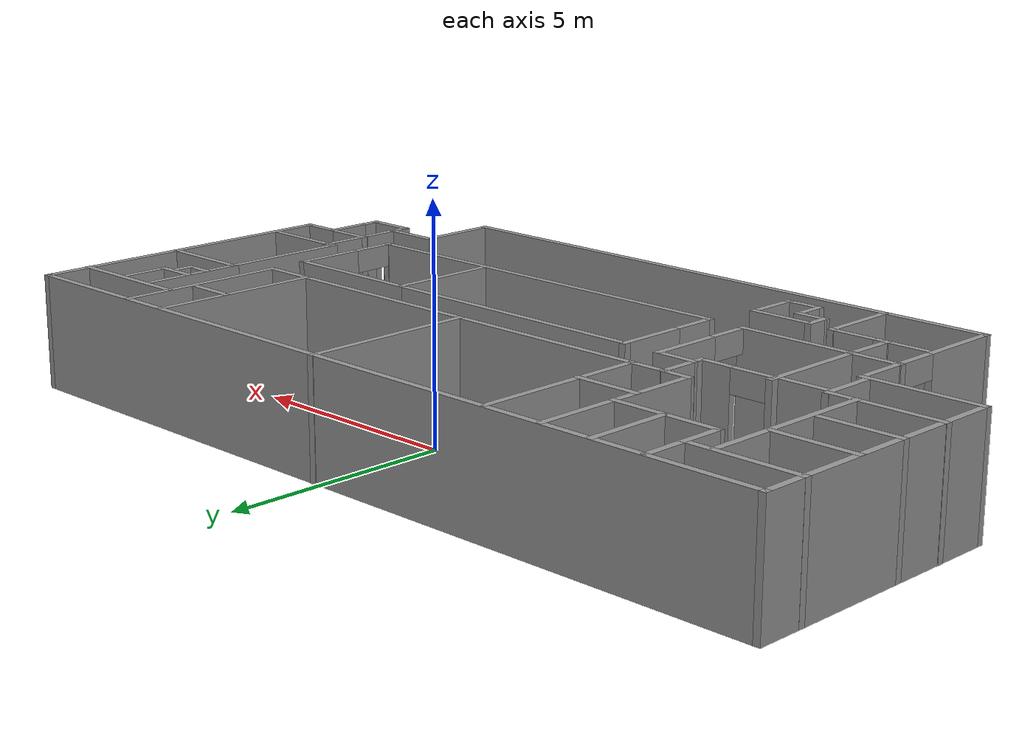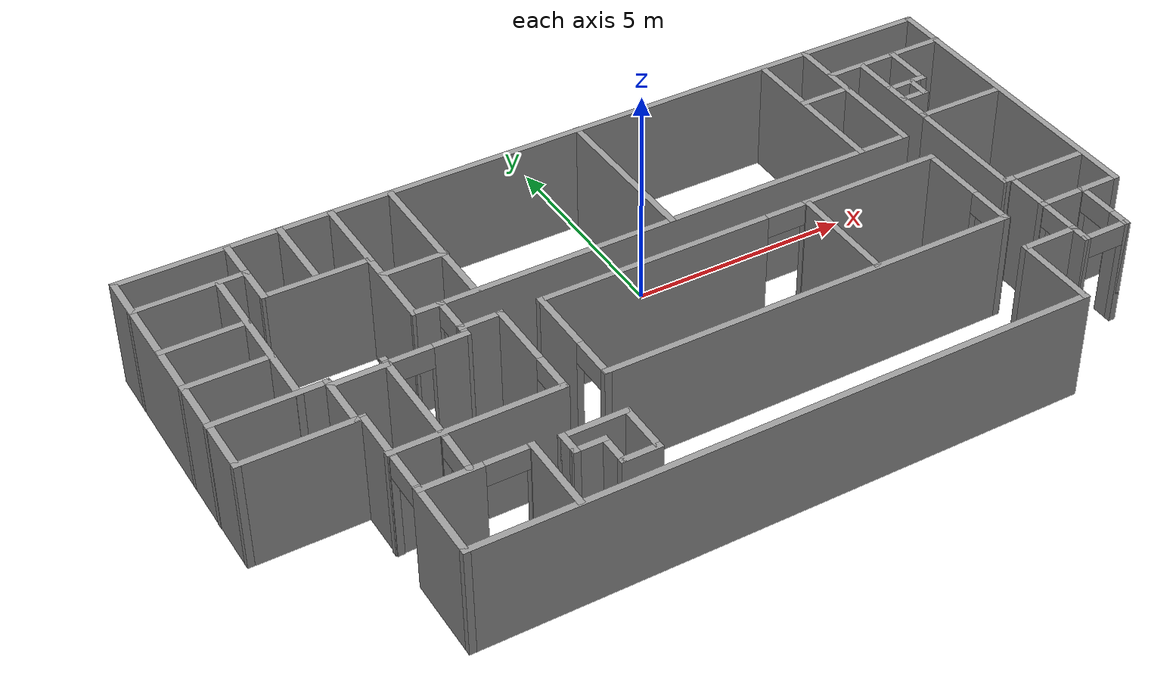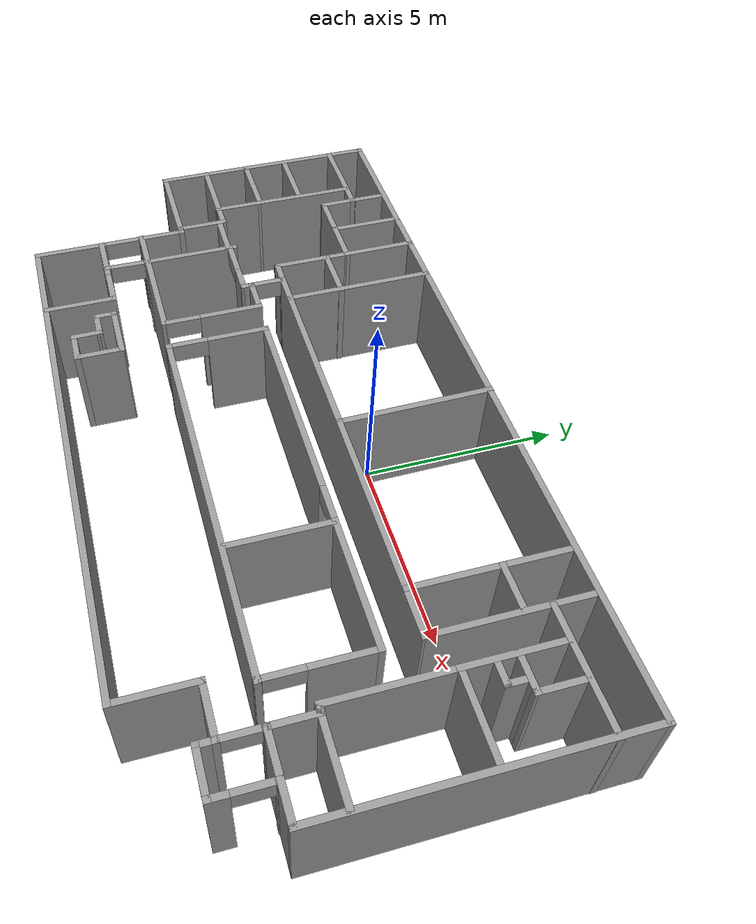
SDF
<?xml version='1.0'?>
<sdf version='1.6'>
  <model name='dehf1'>
    <pose frame=''>-0.693207 -2.07735 0 0 -0 0</pose>
    <link name='Wall_100'>
      <pose frame=''>2.05121 0.314345 0 0 -0 0</pose>
      <visual name='Wall_100_Visual_0'>
        <pose frame=''>-2.10558 0 1.25 0 -0 0</pose>
        <geometry>
          <box>
            <size>5.29904 0.15 2.5</size>
          </box>
        </geometry>
        <material>
          <script>
            <uri>file://media/materials/scripts/gazebo.material</uri>
            <name>Gazebo/Grey</name>
          </script>
          <ambient>1 1 1 1</ambient>
        </material>
      </visual>
      <collision name='Wall_100_Collision_0'>
        <geometry>
          <box>
            <size>5.29904 0.15 2.5</size>
          </box>
        </geometry>
        <pose frame=''>-2.10558 0 1.25 0 -0 0</pose>
      </collision>
      <visual name='Wall_100_Visual_1'>
        <pose frame=''>3.09952 0 1.25 0 -0 0</pose>
        <geometry>
          <box>
            <size>3.31115 0.15 2.5</size>
          </box>
        </geometry>
        <material>
          <script>
            <uri>file://media/materials/scripts/gazebo.material</uri>
            <name>Gazebo/Grey</name>
          </script>
          <ambient>1 1 1 1</ambient>
        </material>
      </visual>
      <collision name='Wall_100_Collision_1'>
        <geometry>
          <box>
            <size>3.31115 0.15 2.5</size>
          </box>
        </geometry>
        <pose frame=''>3.09952 0 1.25 0 -0 0</pose>
      </collision>
      <visual name='Wall_100_Visual_2'>
        <pose frame=''>0.993942 0 2.25 0 -0 0</pose>
        <geometry>
          <box>
            <size>0.9 0.15 0.5</size>
          </box>
        </geometry>
        <material>
          <script>
            <uri>file://media/materials/scripts/gazebo.material</uri>
            <name>Gazebo/Grey</name>
          </script>
          <ambient>1 1 1 1</ambient>
        </material>
      </visual>
      <collision name='Wall_100_Collision_2'>
        <geometry>
          <box>
            <size>0.9 0.15 0.5</size>
          </box>
        </geometry>
        <pose frame=''>0.993942 0 2.25 0 -0 0</pose>
      </collision>
    </link>
    <link name='Wall_102'>
      <collision name='Wall_102_Collision'>
        <geometry>
          <box>
            <size>2.5 0.15 2.5</size>
          </box>
        </geometry>
        <pose frame=''>0 0 1.25 0 -0 0</pose>
      </collision>
      <visual name='Wall_102_Visual'>
        <pose frame=''>0 0 1.25 0 -0 0</pose>
        <geometry>
          <box>
            <size>2.5 0.15 2.5</size>
          </box>
        </geometry>
        <material>
          <script>
            <uri>file://media/materials/scripts/gazebo.material</uri>
            <name>Gazebo/Grey</name>
          </script>
          <ambient>1 1 1 1</ambient>
        </material>
      </visual>
      <pose frame=''>3.59037 -0.931067 0 0 0 -1.5708</pose>
    </link>
    <link name='Wall_104'>
      <collision name='Wall_104_Collision'>
        <geometry>
          <box>
            <size>11.1951 0.15 2.5</size>
          </box>
        </geometry>
        <pose frame=''>0 0 1.25 0 -0 0</pose>
      </collision>
      <visual name='Wall_104_Visual'>
        <pose frame=''>0 0 1.25 0 -0 0</pose>
        <geometry>
          <box>
            <size>11.1951 0.15 2.5</size>
          </box>
        </geometry>
        <material>
          <script>
            <uri>file://media/materials/scripts/gazebo.material</uri>
            <name>Gazebo/Grey</name>
          </script>
          <ambient>1 1 1 1</ambient>
        </material>
      </visual>
      <pose frame=''>1.17465 1.21384 0 0 0 -3.14023</pose>
    </link>
    <link name='Wall_105'>
      <pose frame=''>-4.34791 0.781331 0 0 0 -1.5708</pose>
      <visual name='Wall_105_Visual_0'>
        <pose frame=''>-0.432332 0 1.25 0 -0 0</pose>
        <geometry>
          <box>
            <size>0.135337 0.15 2.5</size>
          </box>
        </geometry>
        <material>
          <script>
            <uri>file://media/materials/scripts/gazebo.material</uri>
            <name>Gazebo/Grey</name>
          </script>
          <ambient>1 1 1 1</ambient>
        </material>
      </visual>
      <collision name='Wall_105_Collision_0'>
        <geometry>
          <box>
            <size>0.135337 0.15 2.5</size>
          </box>
        </geometry>
        <pose frame=''>-0.432332 0 1.25 0 -0 0</pose>
      </collision>
      <visual name='Wall_105_Visual_1'>
        <pose frame=''>0.428668 0 1.25 0 -0 0</pose>
        <geometry>
          <box>
            <size>0.142663 0.15 2.5</size>
          </box>
        </geometry>
        <material>
          <script>
            <uri>file://media/materials/scripts/gazebo.material</uri>
            <name>Gazebo/Grey</name>
          </script>
          <ambient>1 1 1 1</ambient>
        </material>
      </visual>
      <collision name='Wall_105_Collision_1'>
        <geometry>
          <box>
            <size>0.142663 0.15 2.5</size>
          </box>
        </geometry>
        <pose frame=''>0.428668 0 1.25 0 -0 0</pose>
      </collision>
      <visual name='Wall_105_Visual_2'>
        <pose frame=''>-0.003663 0 2.25 0 -0 0</pose>
        <geometry>
          <box>
            <size>0.722 0.15 0.5</size>
          </box>
        </geometry>
        <material>
          <script>
            <uri>file://media/materials/scripts/gazebo.material</uri>
            <name>Gazebo/Grey</name>
          </script>
          <ambient>1 1 1 1</ambient>
        </material>
      </visual>
      <collision name='Wall_105_Collision_2'>
        <geometry>
          <box>
            <size>0.722 0.15 0.5</size>
          </box>
        </geometry>
        <pose frame=''>-0.003663 0 2.25 0 -0 0</pose>
      </collision>
    </link>
    <link name='Wall_106'>
      <collision name='Wall_106_Collision'>
        <geometry>
          <box>
            <size>1 0.15 2.5</size>
          </box>
        </geometry>
        <pose frame=''>0 0 1.25 0 -0 0</pose>
      </collision>
      <visual name='Wall_106_Visual'>
        <pose frame=''>0 0 1.25 0 -0 0</pose>
        <geometry>
          <box>
            <size>1 0.15 2.5</size>
          </box>
        </geometry>
        <material>
          <script>
            <uri>file://media/materials/scripts/gazebo.material</uri>
            <name>Gazebo/Grey</name>
          </script>
          <ambient>1 1 1 1</ambient>
        </material>
      </visual>
      <pose frame=''>-3.92285 0.356338 0 0 -0 1.7e-05</pose>
    </link>
    <link name='Wall_107'>
      <pose frame=''>-3.49779 -0.884154 0 0 0 -1.5708</pose>
      <visual name='Wall_107_Visual_0'>
        <pose frame=''>-0.500256 0 1.25 0 -0 0</pose>
        <geometry>
          <box>
            <size>1.6302 0.15 2.5</size>
          </box>
        </geometry>
        <material>
          <script>
            <uri>file://media/materials/scripts/gazebo.material</uri>
            <name>Gazebo/Grey</name>
          </script>
          <ambient>1 1 1 1</ambient>
        </material>
      </visual>
      <collision name='Wall_107_Collision_0'>
        <geometry>
          <box>
            <size>1.6302 0.15 2.5</size>
          </box>
        </geometry>
        <pose frame=''>-0.500256 0 1.25 0 -0 0</pose>
      </collision>
      <visual name='Wall_107_Visual_1'>
        <pose frame=''>1.2651 0 1.25 0 -0 0</pose>
        <geometry>
          <box>
            <size>0.100513 0.15 2.5</size>
          </box>
        </geometry>
        <material>
          <script>
            <uri>file://media/materials/scripts/gazebo.material</uri>
            <name>Gazebo/Grey</name>
          </script>
          <ambient>1 1 1 1</ambient>
        </material>
      </visual>
      <collision name='Wall_107_Collision_1'>
        <geometry>
          <box>
            <size>0.100513 0.15 2.5</size>
          </box>
        </geometry>
        <pose frame=''>1.2651 0 1.25 0 -0 0</pose>
      </collision>
      <visual name='Wall_107_Visual_2'>
        <pose frame=''>0.764846 0 2.25 0 -0 0</pose>
        <geometry>
          <box>
            <size>0.9 0.15 0.5</size>
          </box>
        </geometry>
        <material>
          <script>
            <uri>file://media/materials/scripts/gazebo.material</uri>
            <name>Gazebo/Grey</name>
          </script>
          <ambient>1 1 1 1</ambient>
        </material>
      </visual>
      <collision name='Wall_107_Collision_2'>
        <geometry>
          <box>
            <size>0.9 0.15 0.5</size>
          </box>
        </geometry>
        <pose frame=''>0.764846 0 2.25 0 -0 0</pose>
      </collision>
    </link>
    <link name='Wall_108'>
      <collision name='Wall_108_Collision'>
        <geometry>
          <box>
            <size>3.73782 0.15 2.5</size>
          </box>
        </geometry>
        <pose frame=''>0 0 1.25 0 -0 0</pose>
      </collision>
      <visual name='Wall_108_Visual'>
        <pose frame=''>0 0 1.25 0 -0 0</pose>
        <geometry>
          <box>
            <size>3.73782 0.15 2.5</size>
          </box>
        </geometry>
        <material>
          <script>
            <uri>file://media/materials/scripts/gazebo.material</uri>
            <name>Gazebo/Grey</name>
          </script>
          <ambient>1 1 1 1</ambient>
        </material>
      </visual>
      <pose frame=''>-5.29179 -2.12466 0 0 -0 3.14159</pose>
    </link>
    <link name='Wall_111'>
      <collision name='Wall_111_Collision'>
        <geometry>
          <box>
            <size>1.35149 0.15 2.5</size>
          </box>
        </geometry>
        <pose frame=''>0 0 1.25 0 -0 0</pose>
      </collision>
      <visual name='Wall_111_Visual'>
        <pose frame=''>0 0 1.25 0 -0 0</pose>
        <geometry>
          <box>
            <size>1.35149 0.15 2.5</size>
          </box>
        </geometry>
        <material>
          <script>
            <uri>file://media/materials/scripts/gazebo.material</uri>
            <name>Gazebo/Grey</name>
          </script>
          <ambient>1 1 1 1</ambient>
        </material>
      </visual>
      <pose frame=''>-7.20716 -0.382984 0 0 -0 1.5708</pose>
    </link>
    <link name='Wall_114'>
      <collision name='Wall_114_Collision'>
        <geometry>
          <box>
            <size>1.27555 0.15 2.5</size>
          </box>
        </geometry>
        <pose frame=''>0 0 1.25 0 -0 0</pose>
      </collision>
      <visual name='Wall_114_Visual'>
        <pose frame=''>0 0 1.25 0 -0 0</pose>
        <geometry>
          <box>
            <size>1.27555 0.15 2.5</size>
          </box>
        </geometry>
        <material>
          <script>
            <uri>file://media/materials/scripts/gazebo.material</uri>
            <name>Gazebo/Grey</name>
          </script>
          <ambient>1 1 1 1</ambient>
        </material>
      </visual>
      <pose frame=''>-6.62922 0.096092 0 0 -0 0</pose>
    </link>
    <link name='Wall_116'>
      <collision name='Wall_116_Collision'>
        <geometry>
          <box>
            <size>2.53262 0.15 2.5</size>
          </box>
        </geometry>
        <pose frame=''>0 0 1.25 0 -0 0</pose>
      </collision>
      <visual name='Wall_116_Visual'>
        <pose frame=''>0 0 1.25 0 -0 0</pose>
        <geometry>
          <box>
            <size>2.53262 0.15 2.5</size>
          </box>
        </geometry>
        <material>
          <script>
            <uri>file://media/materials/scripts/gazebo.material</uri>
            <name>Gazebo/Grey</name>
          </script>
          <ambient>1 1 1 1</ambient>
        </material>
      </visual>
      <pose frame=''>-6.02829 -0.936154 0 0 0 -1.5708</pose>
    </link>
    <link name='Wall_118'>
      <collision name='Wall_118_Collision'>
        <geometry>
          <box>
            <size>0.364454 0.15 2.5</size>
          </box>
        </geometry>
        <pose frame=''>0 0 1.25 0 -0 0</pose>
      </collision>
      <visual name='Wall_118_Visual'>
        <pose frame=''>0 0 1.25 0 -0 0</pose>
        <geometry>
          <box>
            <size>0.364454 0.15 2.5</size>
          </box>
        </geometry>
        <material>
          <script>
            <uri>file://media/materials/scripts/gazebo.material</uri>
            <name>Gazebo/Grey</name>
          </script>
          <ambient>1 1 1 1</ambient>
        </material>
      </visual>
      <pose frame=''>-4.35035 0.249338 0 0 0 -1.59361</pose>
    </link>
    <link name='Wall_119'>
      <pose frame=''>-5.18779 0.142346 0 0 -0 3.14159</pose>
      <visual name='Wall_119_Visual_0'>
        <pose frame=''>-0.514859 0 1.25 0 -0 0</pose>
        <geometry>
          <box>
            <size>0.79005 0.15 2.5</size>
          </box>
        </geometry>
        <material>
          <script>
            <uri>file://media/materials/scripts/gazebo.material</uri>
            <name>Gazebo/Grey</name>
          </script>
          <ambient>1 1 1 1</ambient>
        </material>
      </visual>
      <collision name='Wall_119_Collision_0'>
        <geometry>
          <box>
            <size>0.79005 0.15 2.5</size>
          </box>
        </geometry>
        <pose frame=''>-0.514859 0 1.25 0 -0 0</pose>
      </collision>
      <visual name='Wall_119_Visual_1'>
        <pose frame=''>0.845025 0 1.25 0 -0 0</pose>
        <geometry>
          <box>
            <size>0.129719 0.15 2.5</size>
          </box>
        </geometry>
        <material>
          <script>
            <uri>file://media/materials/scripts/gazebo.material</uri>
            <name>Gazebo/Grey</name>
          </script>
          <ambient>1 1 1 1</ambient>
        </material>
      </visual>
      <collision name='Wall_119_Collision_1'>
        <geometry>
          <box>
            <size>0.129719 0.15 2.5</size>
          </box>
        </geometry>
        <pose frame=''>0.845025 0 1.25 0 -0 0</pose>
      </collision>
      <visual name='Wall_119_Visual_2'>
        <pose frame=''>0.330166 0 2.25 0 -0 0</pose>
        <geometry>
          <box>
            <size>0.9 0.15 0.5</size>
          </box>
        </geometry>
        <material>
          <script>
            <uri>file://media/materials/scripts/gazebo.material</uri>
            <name>Gazebo/Grey</name>
          </script>
          <ambient>1 1 1 1</ambient>
        </material>
      </visual>
      <collision name='Wall_119_Collision_2'>
        <geometry>
          <box>
            <size>0.9 0.15 0.5</size>
          </box>
        </geometry>
        <pose frame=''>0.330166 0 2.25 0 -0 0</pose>
      </collision>
    </link>
    <link name='Wall_121'>
      <pose frame=''>-5.91829 -3.23865 0 0 -0 0</pose>
      <visual name='Wall_121_Visual_0'>
        <pose frame=''>-0.531984 0 1.25 0 -0 0</pose>
        <geometry>
          <box>
            <size>1.36077 0.15 2.5</size>
          </box>
        </geometry>
        <material>
          <script>
            <uri>file://media/materials/scripts/gazebo.material</uri>
            <name>Gazebo/Grey</name>
          </script>
          <ambient>1 1 1 1</ambient>
        </material>
      </visual>
      <collision name='Wall_121_Collision_0'>
        <geometry>
          <box>
            <size>1.36077 0.15 2.5</size>
          </box>
        </geometry>
        <pose frame=''>-0.531984 0 1.25 0 -0 0</pose>
      </collision>
      <visual name='Wall_121_Visual_1'>
        <pose frame=''>1.13038 0 1.25 0 -0 0</pose>
        <geometry>
          <box>
            <size>0.163969 0.15 2.5</size>
          </box>
        </geometry>
        <material>
          <script>
            <uri>file://media/materials/scripts/gazebo.material</uri>
            <name>Gazebo/Grey</name>
          </script>
          <ambient>1 1 1 1</ambient>
        </material>
      </visual>
      <collision name='Wall_121_Collision_1'>
        <geometry>
          <box>
            <size>0.163969 0.15 2.5</size>
          </box>
        </geometry>
        <pose frame=''>1.13038 0 1.25 0 -0 0</pose>
      </collision>
      <visual name='Wall_121_Visual_2'>
        <pose frame=''>0.598401 0 2.25 0 -0 0</pose>
        <geometry>
          <box>
            <size>0.9 0.15 0.5</size>
          </box>
        </geometry>
        <material>
          <script>
            <uri>file://media/materials/scripts/gazebo.material</uri>
            <name>Gazebo/Grey</name>
          </script>
          <ambient>1 1 1 1</ambient>
        </material>
      </visual>
      <collision name='Wall_121_Collision_2'>
        <geometry>
          <box>
            <size>0.9 0.15 0.5</size>
          </box>
        </geometry>
        <pose frame=''>0.598401 0 2.25 0 -0 0</pose>
      </collision>
    </link>
    <link name='Wall_125'>
      <collision name='Wall_125_Collision'>
        <geometry>
          <box>
            <size>3.87614 0.15 2.5</size>
          </box>
        </geometry>
        <pose frame=''>0 0 1.25 0 -0 0</pose>
      </collision>
      <visual name='Wall_125_Visual'>
        <pose frame=''>0 0 1.25 0 -0 0</pose>
        <geometry>
          <box>
            <size>3.87614 0.15 2.5</size>
          </box>
        </geometry>
        <material>
          <script>
            <uri>file://media/materials/scripts/gazebo.material</uri>
            <name>Gazebo/Grey</name>
          </script>
          <ambient>1 1 1 1</ambient>
        </material>
      </visual>
      <pose frame=''>5.57066 3.09198 0 0 0 -1.5708</pose>
    </link>
    <link name='Wall_127'>
      <collision name='Wall_127_Collision'>
        <geometry>
          <box>
            <size>3.86097 0.15 2.5</size>
          </box>
        </geometry>
        <pose frame=''>0 0 1.25 0 -0 0</pose>
      </collision>
      <visual name='Wall_127_Visual'>
        <pose frame=''>0 0 1.25 0 -0 0</pose>
        <geometry>
          <box>
            <size>3.86097 0.15 2.5</size>
          </box>
        </geometry>
        <material>
          <script>
            <uri>file://media/materials/scripts/gazebo.material</uri>
            <name>Gazebo/Grey</name>
          </script>
          <ambient>1 1 1 1</ambient>
        </material>
      </visual>
      <pose frame=''>-3.585 3.06917 0 0 0 -1.5708</pose>
    </link>
    <link name='Wall_131'>
      <collision name='Wall_131_Collision'>
        <geometry>
          <box>
            <size>3.91145 0.15 2.5</size>
          </box>
        </geometry>
        <pose frame=''>0 0 1.25 0 -0 0</pose>
      </collision>
      <visual name='Wall_131_Visual'>
        <pose frame=''>0 0 1.25 0 -0 0</pose>
        <geometry>
          <box>
            <size>3.91145 0.15 2.5</size>
          </box>
        </geometry>
        <material>
          <script>
            <uri>file://media/materials/scripts/gazebo.material</uri>
            <name>Gazebo/Grey</name>
          </script>
          <ambient>1 1 1 1</ambient>
        </material>
      </visual>
      <pose frame=''>0.869731 3.1003 0 0 0 -1.5601</pose>
    </link>
    <link name='Wall_134'>
      <collision name='Wall_134_Collision'>
        <geometry>
          <box>
            <size>1.85744 0.15 2.5</size>
          </box>
        </geometry>
        <pose frame=''>0 0 1.25 0 -0 0</pose>
      </collision>
      <visual name='Wall_134_Visual'>
        <pose frame=''>0 0 1.25 0 -0 0</pose>
        <geometry>
          <box>
            <size>1.85744 0.15 2.5</size>
          </box>
        </geometry>
        <material>
          <script>
            <uri>file://media/materials/scripts/gazebo.material</uri>
            <name>Gazebo/Grey</name>
          </script>
          <ambient>1 1 1 1</ambient>
        </material>
      </visual>
      <pose frame=''>-4.78079 -4.09215 0 0 0 -1.5708</pose>
    </link>
    <link name='Wall_136'>
      <pose frame=''>-6.02829 -2.67766 0 0 0 -1.5917</pose>
      <visual name='Wall_136_Visual_0'>
        <pose frame=''>-0.534639 0 1.25 0 -0 0</pose>
        <geometry>
          <box>
            <size>0.180723 0.15 2.5</size>
          </box>
        </geometry>
        <material>
          <script>
            <uri>file://media/materials/scripts/gazebo.material</uri>
            <name>Gazebo/Grey</name>
          </script>
          <ambient>1 1 1 1</ambient>
        </material>
      </visual>
      <collision name='Wall_136_Collision_0'>
        <geometry>
          <box>
            <size>0.180723 0.15 2.5</size>
          </box>
        </geometry>
        <pose frame=''>-0.534639 0 1.25 0 -0 0</pose>
      </collision>
      <visual name='Wall_136_Visual_1'>
        <pose frame=''>0.540361 0 1.25 0 -0 0</pose>
        <geometry>
          <box>
            <size>0.169277 0.15 2.5</size>
          </box>
        </geometry>
        <material>
          <script>
            <uri>file://media/materials/scripts/gazebo.material</uri>
            <name>Gazebo/Grey</name>
          </script>
          <ambient>1 1 1 1</ambient>
        </material>
      </visual>
      <collision name='Wall_136_Collision_1'>
        <geometry>
          <box>
            <size>0.169277 0.15 2.5</size>
          </box>
        </geometry>
        <pose frame=''>0.540361 0 1.25 0 -0 0</pose>
      </collision>
      <visual name='Wall_136_Visual_2'>
        <pose frame=''>0.005723 0 2.25 0 -0 0</pose>
        <geometry>
          <box>
            <size>0.9 0.15 0.5</size>
          </box>
        </geometry>
        <material>
          <script>
            <uri>file://media/materials/scripts/gazebo.material</uri>
            <name>Gazebo/Grey</name>
          </script>
          <ambient>1 1 1 1</ambient>
        </material>
      </visual>
      <collision name='Wall_136_Collision_2'>
        <geometry>
          <box>
            <size>0.9 0.15 0.5</size>
          </box>
        </geometry>
        <pose frame=''>0.005723 0 2.25 0 -0 0</pose>
      </collision>
    </link>
    <link name='Wall_138'>
      <pose frame=''>6.73121 -0.9274 0 0 0 -1.5708</pose>
      <visual name='Wall_138_Visual_0'>
        <pose frame=''>-0.529769 0 1.25 0 -0 0</pose>
        <geometry>
          <box>
            <size>1.5742 0.15 2.5</size>
          </box>
        </geometry>
        <material>
          <script>
            <uri>file://media/materials/scripts/gazebo.material</uri>
            <name>Gazebo/Grey</name>
          </script>
          <ambient>1 1 1 1</ambient>
        </material>
      </visual>
      <collision name='Wall_138_Collision_0'>
        <geometry>
          <box>
            <size>1.5742 0.15 2.5</size>
          </box>
        </geometry>
        <pose frame=''>-0.529769 0 1.25 0 -0 0</pose>
      </collision>
      <visual name='Wall_138_Visual_1'>
        <pose frame=''>1.2371 0 1.25 0 -0 0</pose>
        <geometry>
          <box>
            <size>0.159537 0.15 2.5</size>
          </box>
        </geometry>
        <material>
          <script>
            <uri>file://media/materials/scripts/gazebo.material</uri>
            <name>Gazebo/Grey</name>
          </script>
          <ambient>1 1 1 1</ambient>
        </material>
      </visual>
      <collision name='Wall_138_Collision_1'>
        <geometry>
          <box>
            <size>0.159537 0.15 2.5</size>
          </box>
        </geometry>
        <pose frame=''>1.2371 0 1.25 0 -0 0</pose>
      </collision>
      <visual name='Wall_138_Visual_2'>
        <pose frame=''>0.707331 0 2.25 0 -0 0</pose>
        <geometry>
          <box>
            <size>0.9 0.15 0.5</size>
          </box>
        </geometry>
        <material>
          <script>
            <uri>file://media/materials/scripts/gazebo.material</uri>
            <name>Gazebo/Grey</name>
          </script>
          <ambient>1 1 1 1</ambient>
        </material>
      </visual>
      <collision name='Wall_138_Collision_2'>
        <geometry>
          <box>
            <size>0.9 0.15 0.5</size>
          </box>
        </geometry>
        <pose frame=''>0.707331 0 2.25 0 -0 0</pose>
      </collision>
    </link>
    <link name='Wall_140'>
      <collision name='Wall_140_Collision'>
        <geometry>
          <box>
            <size>3.88549 0.15 2.5</size>
          </box>
        </geometry>
        <pose frame=''>0 0 1.25 0 -0 0</pose>
      </collision>
      <visual name='Wall_140_Visual'>
        <pose frame=''>0 0 1.25 0 -0 0</pose>
        <geometry>
          <box>
            <size>3.88549 0.15 2.5</size>
          </box>
        </geometry>
        <material>
          <script>
            <uri>file://media/materials/scripts/gazebo.material</uri>
            <name>Gazebo/Grey</name>
          </script>
          <ambient>1 1 1 1</ambient>
        </material>
      </visual>
      <pose frame=''>6.69721 3.08934 0 0 -0 1.5708</pose>
    </link>
    <link name='Wall_142'>
      <collision name='Wall_142_Collision'>
        <geometry>
          <box>
            <size>1.25 0.15 2.5</size>
          </box>
        </geometry>
        <pose frame=''>0 0 1.25 0 -0 0</pose>
      </collision>
      <visual name='Wall_142_Visual'>
        <pose frame=''>0 0 1.25 0 -0 0</pose>
        <geometry>
          <box>
            <size>1.25 0.15 2.5</size>
          </box>
        </geometry>
        <material>
          <script>
            <uri>file://media/materials/scripts/gazebo.material</uri>
            <name>Gazebo/Grey</name>
          </script>
          <ambient>1 1 1 1</ambient>
        </material>
      </visual>
      <pose frame=''>6.12393 3.3355 0 0 -0 0</pose>
    </link>
    <link name='Wall_144'>
      <collision name='Wall_144_Collision'>
        <geometry>
          <box>
            <size>3 0.15 2.5</size>
          </box>
        </geometry>
        <pose frame=''>0 0 1.25 0 -0 0</pose>
      </collision>
      <visual name='Wall_144_Visual'>
        <pose frame=''>0 0 1.25 0 -0 0</pose>
        <geometry>
          <box>
            <size>3 0.15 2.5</size>
          </box>
        </geometry>
        <material>
          <script>
            <uri>file://media/materials/scripts/gazebo.material</uri>
            <name>Gazebo/Grey</name>
          </script>
          <ambient>1 1 1 1</ambient>
        </material>
      </visual>
      <pose frame=''>8.14893 3.945 0 0 -0 0</pose>
    </link>
    <link name='Wall_146'>
      <collision name='Wall_146_Collision'>
        <geometry>
          <box>
            <size>2.43972 0.15 2.5</size>
          </box>
        </geometry>
        <pose frame=''>0 0 1.25 0 -0 0</pose>
      </collision>
      <visual name='Wall_146_Visual'>
        <pose frame=''>0 0 1.25 0 -0 0</pose>
        <geometry>
          <box>
            <size>2.43972 0.15 2.5</size>
          </box>
        </geometry>
        <material>
          <script>
            <uri>file://media/materials/scripts/gazebo.material</uri>
            <name>Gazebo/Grey</name>
          </script>
          <ambient>1 1 1 1</ambient>
        </material>
      </visual>
      <pose frame=''>7.51721 2.77734 0 0 0 -1.5708</pose>
    </link>
    <link name='Wall_148'>
      <collision name='Wall_148_Collision'>
        <geometry>
          <box>
            <size>1 0.15 2.5</size>
          </box>
        </geometry>
        <pose frame=''>0 0 1.25 0 -0 0</pose>
      </collision>
      <visual name='Wall_148_Visual'>
        <pose frame=''>0 0 1.25 0 -0 0</pose>
        <geometry>
          <box>
            <size>1 0.15 2.5</size>
          </box>
        </geometry>
        <material>
          <script>
            <uri>file://media/materials/scripts/gazebo.material</uri>
            <name>Gazebo/Grey</name>
          </script>
          <ambient>1 1 1 1</ambient>
        </material>
      </visual>
      <pose frame=''>7.94243 2.8525 0 0 -0 0</pose>
    </link>
    <link name='Wall_149'>
      <collision name='Wall_149_Collision'>
        <geometry>
          <box>
            <size>1.20823 0.15 2.5</size>
          </box>
        </geometry>
        <pose frame=''>0 0 1.25 0 -0 0</pose>
      </collision>
      <visual name='Wall_149_Visual'>
        <pose frame=''>0 0 1.25 0 -0 0</pose>
        <geometry>
          <box>
            <size>1.20823 0.15 2.5</size>
          </box>
        </geometry>
        <material>
          <script>
            <uri>file://media/materials/scripts/gazebo.material</uri>
            <name>Gazebo/Grey</name>
          </script>
          <ambient>1 1 1 1</ambient>
        </material>
      </visual>
      <pose frame=''>8.36793 3.3815 0 0 -0 1.56985</pose>
    </link>
    <link name='Wall_151'>
      <collision name='Wall_151_Collision'>
        <geometry>
          <box>
            <size>0.598792 0.15 2.5</size>
          </box>
        </geometry>
        <pose frame=''>0 0 1.25 0 -0 0</pose>
      </collision>
      <visual name='Wall_151_Visual'>
        <pose frame=''>0 0 1.25 0 -0 0</pose>
        <geometry>
          <box>
            <size>0.598792 0.15 2.5</size>
          </box>
        </geometry>
        <material>
          <script>
            <uri>file://media/materials/scripts/gazebo.material</uri>
            <name>Gazebo/Grey</name>
          </script>
          <ambient>1 1 1 1</ambient>
        </material>
      </visual>
      <pose frame=''>8.06921 2.59384 0 0 0 -1.5708</pose>
    </link>
    <link name='Wall_152'>
      <collision name='Wall_152_Collision'>
        <geometry>
          <box>
            <size>0.701779 0.15 2.5</size>
          </box>
        </geometry>
        <pose frame=''>0 0 1.25 0 -0 0</pose>
      </collision>
      <visual name='Wall_152_Visual'>
        <pose frame=''>0 0 1.25 0 -0 0</pose>
        <geometry>
          <box>
            <size>0.701779 0.15 2.5</size>
          </box>
        </geometry>
        <material>
          <script>
            <uri>file://media/materials/scripts/gazebo.material</uri>
            <name>Gazebo/Grey</name>
          </script>
          <ambient>1 1 1 1</ambient>
        </material>
      </visual>
      <pose frame=''>7.79321 2.36935 0 0 -0 3.14159</pose>
    </link>
    <link name='Wall_154'>
      <collision name='Wall_154_Collision'>
        <geometry>
          <box>
            <size>2.52225 0.15 2.5</size>
          </box>
        </geometry>
        <pose frame=''>0 0 1.25 0 -0 0</pose>
      </collision>
      <visual name='Wall_154_Visual'>
        <pose frame=''>0 0 1.25 0 -0 0</pose>
        <geometry>
          <box>
            <size>2.52225 0.15 2.5</size>
          </box>
        </geometry>
        <material>
          <script>
            <uri>file://media/materials/scripts/gazebo.material</uri>
            <name>Gazebo/Grey</name>
          </script>
          <ambient>1 1 1 1</ambient>
        </material>
      </visual>
      <pose frame=''>-8.38192 4.01549 0 0 0 -0.000123</pose>
    </link>
    <link name='Wall_155'>
      <collision name='Wall_155_Collision'>
        <geometry>
          <box>
            <size>1.0628 0.15 2.5</size>
          </box>
        </geometry>
        <pose frame=''>0 0 1.25 0 -0 0</pose>
      </collision>
      <visual name='Wall_155_Visual'>
        <pose frame=''>0 0 1.25 0 -0 0</pose>
        <geometry>
          <box>
            <size>1.0628 0.15 2.5</size>
          </box>
        </geometry>
        <material>
          <script>
            <uri>file://media/materials/scripts/gazebo.material</uri>
            <name>Gazebo/Grey</name>
          </script>
          <ambient>1 1 1 1</ambient>
        </material>
      </visual>
      <pose frame=''>-7.19579 4.47185 0 0 -0 1.5708</pose>
    </link>
    <link name='Wall_16'>
      <pose frame=''>8.71421 -2.87915 0 0 0 -1.5708</pose>
      <visual name='Wall_16_Visual_0'>
        <pose frame=''>-0.657302 0 1.25 0 -0 0</pose>
        <geometry>
          <box>
            <size>0.170397 0.15 2.5</size>
          </box>
        </geometry>
        <material>
          <script>
            <uri>file://media/materials/scripts/gazebo.material</uri>
            <name>Gazebo/Grey</name>
          </script>
          <ambient>1 1 1 1</ambient>
        </material>
      </visual>
      <collision name='Wall_16_Collision_0'>
        <geometry>
          <box>
            <size>0.170397 0.15 2.5</size>
          </box>
        </geometry>
        <pose frame=''>-0.657302 0 1.25 0 -0 0</pose>
      </collision>
      <visual name='Wall_16_Visual_1'>
        <pose frame=''>0.500198 0 1.25 0 -0 0</pose>
        <geometry>
          <box>
            <size>0.484603 0.15 2.5</size>
          </box>
        </geometry>
        <material>
          <script>
            <uri>file://media/materials/scripts/gazebo.material</uri>
            <name>Gazebo/Grey</name>
          </script>
          <ambient>1 1 1 1</ambient>
        </material>
      </visual>
      <collision name='Wall_16_Collision_1'>
        <geometry>
          <box>
            <size>0.484603 0.15 2.5</size>
          </box>
        </geometry>
        <pose frame=''>0.500198 0 1.25 0 -0 0</pose>
      </collision>
      <visual name='Wall_16_Visual_2'>
        <pose frame=''>-0.157103 0 2.25 0 -0 0</pose>
        <geometry>
          <box>
            <size>0.83 0.15 0.5</size>
          </box>
        </geometry>
        <material>
          <script>
            <uri>file://media/materials/scripts/gazebo.material</uri>
            <name>Gazebo/Grey</name>
          </script>
          <ambient>1 1 1 1</ambient>
        </material>
      </visual>
      <collision name='Wall_16_Collision_2'>
        <geometry>
          <box>
            <size>0.83 0.15 0.5</size>
          </box>
        </geometry>
        <pose frame=''>-0.157103 0 2.25 0 -0 0</pose>
      </collision>
    </link>
    <link name='Wall_160'>
      <collision name='Wall_160_Collision'>
        <geometry>
          <box>
            <size>2.5 0.15 2.5</size>
          </box>
        </geometry>
        <pose frame=''>0 0 1.25 0 -0 0</pose>
      </collision>
      <visual name='Wall_160_Visual'>
        <pose frame=''>0 0 1.25 0 -0 0</pose>
        <geometry>
          <box>
            <size>2.5 0.15 2.5</size>
          </box>
        </geometry>
        <material>
          <script>
            <uri>file://media/materials/scripts/gazebo.material</uri>
            <name>Gazebo/Grey</name>
          </script>
          <ambient>1 1 1 1</ambient>
        </material>
      </visual>
      <pose frame=''>-8.39893 0.21201 0 0 -0 3.14159</pose>
    </link>
    <link name='Wall_164'>
      <collision name='Wall_164_Collision'>
        <geometry>
          <box>
            <size>3.90005 0.15 2.5</size>
          </box>
        </geometry>
        <pose frame=''>0 0 1.25 0 -0 0</pose>
      </collision>
      <visual name='Wall_164_Visual'>
        <pose frame=''>0 0 1.25 0 -0 0</pose>
        <geometry>
          <box>
            <size>3.90005 0.15 2.5</size>
          </box>
        </geometry>
        <material>
          <script>
            <uri>file://media/materials/scripts/gazebo.material</uri>
            <name>Gazebo/Grey</name>
          </script>
          <ambient>1 1 1 1</ambient>
        </material>
      </visual>
      <pose frame=''>-7.79079 2.07735 0 0 -0 1.56546</pose>
    </link>
    <link name='Wall_166'>
      <collision name='Wall_166_Collision'>
        <geometry>
          <box>
            <size>1 0.15 2.5</size>
          </box>
        </geometry>
        <pose frame=''>0 0 1.25 0 -0 0</pose>
      </collision>
      <visual name='Wall_166_Visual'>
        <pose frame=''>0 0 1.25 0 -0 0</pose>
        <geometry>
          <box>
            <size>1 0.15 2.5</size>
          </box>
        </geometry>
        <material>
          <script>
            <uri>file://media/materials/scripts/gazebo.material</uri>
            <name>Gazebo/Grey</name>
          </script>
          <ambient>1 1 1 1</ambient>
        </material>
      </visual>
      <pose frame=''>-7.19579 3.59035 0 0 0 -1.5708</pose>
    </link>
    <link name='Wall_167'>
      <collision name='Wall_167_Collision'>
        <geometry>
          <box>
            <size>2.42525 0.15 2.5</size>
          </box>
        </geometry>
        <pose frame=''>0 0 1.25 0 -0 0</pose>
      </collision>
      <visual name='Wall_167_Visual'>
        <pose frame=''>0 0 1.25 0 -0 0</pose>
        <geometry>
          <box>
            <size>2.42525 0.15 2.5</size>
          </box>
        </geometry>
        <material>
          <script>
            <uri>file://media/materials/scripts/gazebo.material</uri>
            <name>Gazebo/Grey</name>
          </script>
          <ambient>1 1 1 1</ambient>
        </material>
      </visual>
      <pose frame=''>-6.05829 3.16085 0 0 0 -0.003956</pose>
    </link>
    <link name='Wall_169'>
      <collision name='Wall_169_Collision'>
        <geometry>
          <box>
            <size>1.9222 0.15 2.5</size>
          </box>
        </geometry>
        <pose frame=''>0 0 1.25 0 -0 0</pose>
      </collision>
      <visual name='Wall_169_Visual'>
        <pose frame=''>0 0 1.25 0 -0 0</pose>
        <geometry>
          <box>
            <size>1.9222 0.15 2.5</size>
          </box>
        </geometry>
        <material>
          <script>
            <uri>file://media/materials/scripts/gazebo.material</uri>
            <name>Gazebo/Grey</name>
          </script>
          <ambient>1 1 1 1</ambient>
        </material>
      </visual>
      <pose frame=''>-8.68035 1.42222 0 0 -0 0</pose>
    </link>
    <link name='Wall_17'>
      <pose frame=''>8.20171 -3.54665 0 0 0 -3.14159</pose>
      <visual name='Wall_17_Visual_0'>
        <pose frame=''>-0.511029 0 1.25 0 -0 0</pose>
        <geometry>
          <box>
            <size>0.152515 0.15 2.5</size>
          </box>
        </geometry>
        <material>
          <script>
            <uri>file://media/materials/scripts/gazebo.material</uri>
            <name>Gazebo/Grey</name>
          </script>
          <ambient>1 1 1 1</ambient>
        </material>
      </visual>
      <collision name='Wall_17_Collision_0'>
        <geometry>
          <box>
            <size>0.152515 0.15 2.5</size>
          </box>
        </geometry>
        <pose frame=''>-0.511029 0 1.25 0 -0 0</pose>
      </collision>
      <visual name='Wall_17_Visual_1'>
        <pose frame=''>0.526258 0 1.25 0 -0 0</pose>
        <geometry>
          <box>
            <size>0.122059 0.15 2.5</size>
          </box>
        </geometry>
        <material>
          <script>
            <uri>file://media/materials/scripts/gazebo.material</uri>
            <name>Gazebo/Grey</name>
          </script>
          <ambient>1 1 1 1</ambient>
        </material>
      </visual>
      <collision name='Wall_17_Collision_1'>
        <geometry>
          <box>
            <size>0.122059 0.15 2.5</size>
          </box>
        </geometry>
        <pose frame=''>0.526258 0 1.25 0 -0 0</pose>
      </collision>
      <visual name='Wall_17_Visual_2'>
        <pose frame=''>0.015228 0 2.25 0 -0 0</pose>
        <geometry>
          <box>
            <size>0.9 0.15 0.5</size>
          </box>
        </geometry>
        <material>
          <script>
            <uri>file://media/materials/scripts/gazebo.material</uri>
            <name>Gazebo/Grey</name>
          </script>
          <ambient>1 1 1 1</ambient>
        </material>
      </visual>
      <collision name='Wall_17_Collision_2'>
        <geometry>
          <box>
            <size>0.9 0.15 0.5</size>
          </box>
        </geometry>
        <pose frame=''>0.015228 0 2.25 0 -0 0</pose>
      </collision>
    </link>
    <link name='Wall_171'>
      <collision name='Wall_171_Collision'>
        <geometry>
          <box>
            <size>1.8959 0.15 2.5</size>
          </box>
        </geometry>
        <pose frame=''>0 0 1.25 0 -0 0</pose>
      </collision>
      <visual name='Wall_171_Visual'>
        <pose frame=''>0 0 1.25 0 -0 0</pose>
        <geometry>
          <box>
            <size>1.8959 0.15 2.5</size>
          </box>
        </geometry>
        <material>
          <script>
            <uri>file://media/materials/scripts/gazebo.material</uri>
            <name>Gazebo/Grey</name>
          </script>
          <ambient>1 1 1 1</ambient>
        </material>
      </visual>
      <pose frame=''>-8.68029 2.58635 0 0 -0 0</pose>
    </link>
    <link name='Wall_173'>
      <collision name='Wall_173_Collision'>
        <geometry>
          <box>
            <size>1.9222 0.15 2.5</size>
          </box>
        </geometry>
        <pose frame=''>0 0 1.25 0 -0 0</pose>
      </collision>
      <visual name='Wall_173_Visual'>
        <pose frame=''>0 0 1.25 0 -0 0</pose>
        <geometry>
          <box>
            <size>1.9222 0.15 2.5</size>
          </box>
        </geometry>
        <material>
          <script>
            <uri>file://media/materials/scripts/gazebo.material</uri>
            <name>Gazebo/Grey</name>
          </script>
          <ambient>1 1 1 1</ambient>
        </material>
      </visual>
      <pose frame=''>-6.04879 4.06735 0 0 0 -1.5708</pose>
    </link>
    <link name='Wall_175'>
      <collision name='Wall_175_Collision'>
        <geometry>
          <box>
            <size>1.93371 0.15 2.5</size>
          </box>
        </geometry>
        <pose frame=''>0 0 1.25 0 -0 0</pose>
      </collision>
      <visual name='Wall_175_Visual'>
        <pose frame=''>0 0 1.25 0 -0 0</pose>
        <geometry>
          <box>
            <size>1.93371 0.15 2.5</size>
          </box>
        </geometry>
        <material>
          <script>
            <uri>file://media/materials/scripts/gazebo.material</uri>
            <name>Gazebo/Grey</name>
          </script>
          <ambient>1 1 1 1</ambient>
        </material>
      </visual>
      <pose frame=''>-4.92079 4.04835 0 0 -0 1.5708</pose>
    </link>
    <link name='Wall_177'>
      <collision name='Wall_177_Collision'>
        <geometry>
          <box>
            <size>2.09573 0.15 2.5</size>
          </box>
        </geometry>
        <pose frame=''>0 0 1.25 0 -0 0</pose>
      </collision>
      <visual name='Wall_177_Visual'>
        <pose frame=''>0 0 1.25 0 -0 0</pose>
        <geometry>
          <box>
            <size>2.09573 0.15 2.5</size>
          </box>
        </geometry>
        <material>
          <script>
            <uri>file://media/materials/scripts/gazebo.material</uri>
            <name>Gazebo/Grey</name>
          </script>
          <ambient>1 1 1 1</ambient>
        </material>
      </visual>
      <pose frame=''>-4.92262 2.18348 0 0 0 -1.57268</pose>
    </link>
    <link name='Wall_178'>
      <collision name='Wall_178_Collision'>
        <geometry>
          <box>
            <size>0.726557 0.15 2.5</size>
          </box>
        </geometry>
        <pose frame=''>0 0 1.25 0 -0 0</pose>
      </collision>
      <visual name='Wall_178_Visual'>
        <pose frame=''>0 0 1.25 0 -0 0</pose>
        <geometry>
          <box>
            <size>0.726557 0.15 2.5</size>
          </box>
        </geometry>
        <material>
          <script>
            <uri>file://media/materials/scripts/gazebo.material</uri>
            <name>Gazebo/Grey</name>
          </script>
          <ambient>1 1 1 1</ambient>
        </material>
      </visual>
      <pose frame=''>-4.63618 1.20848 0 0 0 -0.007442</pose>
    </link>
    <link name='Wall_18'>
      <collision name='Wall_18_Collision'>
        <geometry>
          <box>
            <size>0.521 0.15 2.5</size>
          </box>
        </geometry>
        <pose frame=''>0 0 1.25 0 -0 0</pose>
      </collision>
      <visual name='Wall_18_Visual'>
        <pose frame=''>0 0 1.25 0 -0 0</pose>
        <geometry>
          <box>
            <size>0.521 0.15 2.5</size>
          </box>
        </geometry>
        <material>
          <script>
            <uri>file://media/materials/scripts/gazebo.material</uri>
            <name>Gazebo/Grey</name>
          </script>
          <ambient>1 1 1 1</ambient>
        </material>
      </visual>
      <pose frame=''>7.68921 -3.36115 0 0 -0 1.5708</pose>
    </link>
    <link name='Wall_180'>
      <collision name='Wall_180_Collision'>
        <geometry>
          <box>
            <size>1.5 0.15 2.5</size>
          </box>
        </geometry>
        <pose frame=''>0 0 1.25 0 -0 0</pose>
      </collision>
      <visual name='Wall_180_Visual'>
        <pose frame=''>0 0 1.25 0 -0 0</pose>
        <geometry>
          <box>
            <size>1.5 0.15 2.5</size>
          </box>
        </geometry>
        <material>
          <script>
            <uri>file://media/materials/scripts/gazebo.material</uri>
            <name>Gazebo/Grey</name>
          </script>
          <ambient>1 1 1 1</ambient>
        </material>
      </visual>
      <pose frame=''>-4.23623 2.58602 0 0 -0 0</pose>
    </link>
    <link name='Wall_188'>
      <collision name='Wall_188_Collision'>
        <geometry>
          <box>
            <size>1.5 0.15 2.5</size>
          </box>
        </geometry>
        <pose frame=''>0 0 1.25 0 -0 0</pose>
      </collision>
      <visual name='Wall_188_Visual'>
        <pose frame=''>0 0 1.25 0 -0 0</pose>
        <geometry>
          <box>
            <size>1.5 0.15 2.5</size>
          </box>
        </geometry>
        <material>
          <script>
            <uri>file://media/materials/scripts/gazebo.material</uri>
            <name>Gazebo/Grey</name>
          </script>
          <ambient>1 1 1 1</ambient>
        </material>
      </visual>
      <pose frame=''>-3.52687 -3.31148 0 0 -0 0</pose>
    </link>
    <link name='Wall_189'>
      <collision name='Wall_189_Collision'>
        <geometry>
          <box>
            <size>1.25 0.15 2.5</size>
          </box>
        </geometry>
        <pose frame=''>0 0 1.25 0 -0 0</pose>
      </collision>
      <visual name='Wall_189_Visual'>
        <pose frame=''>0 0 1.25 0 -0 0</pose>
        <geometry>
          <box>
            <size>1.25 0.15 2.5</size>
          </box>
        </geometry>
        <material>
          <script>
            <uri>file://media/materials/scripts/gazebo.material</uri>
            <name>Gazebo/Grey</name>
          </script>
          <ambient>1 1 1 1</ambient>
        </material>
      </visual>
      <pose frame=''>-2.85183 -3.86157 0 0 0 -1.57073</pose>
    </link>
    <link name='Wall_194'>
      <collision name='Wall_194_Collision'>
        <geometry>
          <box>
            <size>0.599844 0.15 2.5</size>
          </box>
        </geometry>
        <pose frame=''>0 0 1.25 0 -0 0</pose>
      </collision>
      <visual name='Wall_194_Visual'>
        <pose frame=''>0 0 1.25 0 -0 0</pose>
        <geometry>
          <box>
            <size>0.599844 0.15 2.5</size>
          </box>
        </geometry>
        <material>
          <script>
            <uri>file://media/materials/scripts/gazebo.material</uri>
            <name>Gazebo/Grey</name>
          </script>
          <ambient>1 1 1 1</ambient>
        </material>
      </visual>
      <pose frame=''>-4.20187 -3.53631 0 0 0 -1.5708</pose>
    </link>
    <link name='Wall_195'>
      <collision name='Wall_195_Collision'>
        <geometry>
          <box>
            <size>0.758075 0.15 2.5</size>
          </box>
        </geometry>
        <pose frame=''>0 0 1.25 0 -0 0</pose>
      </collision>
      <visual name='Wall_195_Visual'>
        <pose frame=''>0 0 1.25 0 -0 0</pose>
        <geometry>
          <box>
            <size>0.758075 0.15 2.5</size>
          </box>
        </geometry>
        <material>
          <script>
            <uri>file://media/materials/scripts/gazebo.material</uri>
            <name>Gazebo/Grey</name>
          </script>
          <ambient>1 1 1 1</ambient>
        </material>
      </visual>
      <pose frame=''>-3.89783 -3.7609 0 0 -0 0.000789</pose>
    </link>
    <link name='Wall_197'>
      <collision name='Wall_197_Collision'>
        <geometry>
          <box>
            <size>0.80057 0.15 2.5</size>
          </box>
        </geometry>
        <pose frame=''>0 0 1.25 0 -0 0</pose>
      </collision>
      <visual name='Wall_197_Visual'>
        <pose frame=''>0 0 1.25 0 -0 0</pose>
        <geometry>
          <box>
            <size>0.80057 0.15 2.5</size>
          </box>
        </geometry>
        <material>
          <script>
            <uri>file://media/materials/scripts/gazebo.material</uri>
            <name>Gazebo/Grey</name>
          </script>
          <ambient>1 1 1 1</ambient>
        </material>
      </visual>
      <pose frame=''>-3.59379 -4.08615 0 0 0 -1.5708</pose>
    </link>
    <link name='Wall_198'>
      <collision name='Wall_198_Collision'>
        <geometry>
          <box>
            <size>0.89259 0.15 2.5</size>
          </box>
        </geometry>
        <pose frame=''>0 0 1.25 0 -0 0</pose>
      </collision>
      <visual name='Wall_198_Visual'>
        <pose frame=''>0 0 1.25 0 -0 0</pose>
        <geometry>
          <box>
            <size>0.89259 0.15 2.5</size>
          </box>
        </geometry>
        <material>
          <script>
            <uri>file://media/materials/scripts/gazebo.material</uri>
            <name>Gazebo/Grey</name>
          </script>
          <ambient>1 1 1 1</ambient>
        </material>
      </visual>
      <pose frame=''>-3.22279 -4.41165 0 0 -0 0</pose>
    </link>
    <link name='Wall_2'>
      <collision name='Wall_2_Collision'>
        <geometry>
          <box>
            <size>13.685 0.15 2.5</size>
          </box>
        </geometry>
        <pose frame=''>0 0 1.25 0 -0 0</pose>
      </collision>
      <visual name='Wall_2_Visual'>
        <pose frame=''>0 0 1.25 0 -0 0</pose>
        <geometry>
          <box>
            <size>13.685 0.15 2.5</size>
          </box>
        </geometry>
        <material>
          <script>
            <uri>file://media/materials/scripts/gazebo.material</uri>
            <name>Gazebo/Grey</name>
          </script>
          <ambient>1 1 1 1</ambient>
        </material>
      </visual>
      <pose frame=''>-0.292293 -4.98165 0 0 -0 0</pose>
    </link>
    <link name='Wall_204'>
      <collision name='Wall_204_Collision'>
        <geometry>
          <box>
            <size>2.94536 0.15 2.5</size>
          </box>
        </geometry>
        <pose frame=''>0 0 1.25 0 -0 0</pose>
      </collision>
      <visual name='Wall_204_Visual'>
        <pose frame=''>0 0 1.25 0 -0 0</pose>
        <geometry>
          <box>
            <size>2.94536 0.15 2.5</size>
          </box>
        </geometry>
        <material>
          <script>
            <uri>file://media/materials/scripts/gazebo.material</uri>
            <name>Gazebo/Grey</name>
          </script>
          <ambient>1 1 1 1</ambient>
        </material>
      </visual>
      <pose frame=''>7.51721 0.234846 0 0 0 -1.5708</pose>
    </link>
    <link name='Wall_21'>
      <collision name='Wall_21_Collision'>
        <geometry>
          <box>
            <size>1.95576 0.15 2.5</size>
          </box>
        </geometry>
        <pose frame=''>0 0 1.25 0 -0 0</pose>
      </collision>
      <visual name='Wall_21_Visual'>
        <pose frame=''>0 0 1.25 0 -0 0</pose>
        <geometry>
          <box>
            <size>1.95576 0.15 2.5</size>
          </box>
        </geometry>
        <material>
          <script>
            <uri>file://media/materials/scripts/gazebo.material</uri>
            <name>Gazebo/Grey</name>
          </script>
          <ambient>1 1 1 1</ambient>
        </material>
      </visual>
      <pose frame=''>6.47521 -4.07866 0 0 -0 1.5708</pose>
    </link>
    <link name='Wall_23'>
      <collision name='Wall_23_Collision'>
        <geometry>
          <box>
            <size>1.36454 0.15 2.5</size>
          </box>
        </geometry>
        <pose frame=''>0 0 1.25 0 -0 0</pose>
      </collision>
      <visual name='Wall_23_Visual'>
        <pose frame=''>0 0 1.25 0 -0 0</pose>
        <geometry>
          <box>
            <size>1.36454 0.15 2.5</size>
          </box>
        </geometry>
        <material>
          <script>
            <uri>file://media/materials/scripts/gazebo.material</uri>
            <name>Gazebo/Grey</name>
          </script>
          <ambient>1 1 1 1</ambient>
        </material>
      </visual>
      <pose frame=''>7.08221 -3.17565 0 0 -0 0</pose>
    </link>
    <link name='Wall_25'>
      <pose frame=''>7.68921 -2.69365 0 0 -0 1.5708</pose>
      <visual name='Wall_25_Visual_0'>
        <pose frame=''>-0.497979 0 1.25 0 -0 0</pose>
        <geometry>
          <box>
            <size>0.118269 0.15 2.5</size>
          </box>
        </geometry>
        <material>
          <script>
            <uri>file://media/materials/scripts/gazebo.material</uri>
            <name>Gazebo/Grey</name>
          </script>
          <ambient>1 1 1 1</ambient>
        </material>
      </visual>
      <collision name='Wall_25_Collision_0'>
        <geometry>
          <box>
            <size>0.118269 0.15 2.5</size>
          </box>
        </geometry>
        <pose frame=''>-0.497979 0 1.25 0 -0 0</pose>
      </collision>
      <visual name='Wall_25_Visual_1'>
        <pose frame=''>0.474635 0 1.25 0 -0 0</pose>
        <geometry>
          <box>
            <size>0.164957 0.15 2.5</size>
          </box>
        </geometry>
        <material>
          <script>
            <uri>file://media/materials/scripts/gazebo.material</uri>
            <name>Gazebo/Grey</name>
          </script>
          <ambient>1 1 1 1</ambient>
        </material>
      </visual>
      <collision name='Wall_25_Collision_1'>
        <geometry>
          <box>
            <size>0.164957 0.15 2.5</size>
          </box>
        </geometry>
        <pose frame=''>0.474635 0 1.25 0 -0 0</pose>
      </collision>
      <visual name='Wall_25_Visual_2'>
        <pose frame=''>-0.023344 0 2.25 0 -0 0</pose>
        <geometry>
          <box>
            <size>0.831 0.15 0.5</size>
          </box>
        </geometry>
        <material>
          <script>
            <uri>file://media/materials/scripts/gazebo.material</uri>
            <name>Gazebo/Grey</name>
          </script>
          <ambient>1 1 1 1</ambient>
        </material>
      </visual>
      <collision name='Wall_25_Collision_2'>
        <geometry>
          <box>
            <size>0.831 0.15 0.5</size>
          </box>
        </geometry>
        <pose frame=''>-0.023344 0 2.25 0 -0 0</pose>
      </collision>
    </link>
    <link name='Wall_26'>
      <collision name='Wall_26_Collision'>
        <geometry>
          <box>
            <size>1.17511 0.15 2.5</size>
          </box>
        </geometry>
        <pose frame=''>0 0 1.25 0 -0 0</pose>
      </collision>
      <visual name='Wall_26_Visual'>
        <pose frame=''>0 0 1.25 0 -0 0</pose>
        <geometry>
          <box>
            <size>1.17511 0.15 2.5</size>
          </box>
        </geometry>
        <material>
          <script>
            <uri>file://media/materials/scripts/gazebo.material</uri>
            <name>Gazebo/Grey</name>
          </script>
          <ambient>1 1 1 1</ambient>
        </material>
      </visual>
      <pose frame=''>8.20171 -2.21165 0 0 -0 0</pose>
    </link>
    <link name='Wall_28'>
      <collision name='Wall_28_Collision'>
        <geometry>
          <box>
            <size>1 0.15 2.5</size>
          </box>
        </geometry>
        <pose frame=''>0 0 1.25 0 -0 0</pose>
      </collision>
      <visual name='Wall_28_Visual'>
        <pose frame=''>0 0 1.25 0 -0 0</pose>
        <geometry>
          <box>
            <size>1 0.15 2.5</size>
          </box>
        </geometry>
        <material>
          <script>
            <uri>file://media/materials/scripts/gazebo.material</uri>
            <name>Gazebo/Grey</name>
          </script>
          <ambient>1 1 1 1</ambient>
        </material>
      </visual>
      <pose frame=''>9.13921 -2.21165 0 0 -0 0</pose>
    </link>
    <link name='Wall_30'>
      <collision name='Wall_30_Collision'>
        <geometry>
          <box>
            <size>7.331 0.15 2.5</size>
          </box>
        </geometry>
        <pose frame=''>0 0 1.25 0 -0 0</pose>
      </collision>
      <visual name='Wall_30_Visual'>
        <pose frame=''>0 0 1.25 0 -0 0</pose>
        <geometry>
          <box>
            <size>7.331 0.15 2.5</size>
          </box>
        </geometry>
        <material>
          <script>
            <uri>file://media/materials/scripts/gazebo.material</uri>
            <name>Gazebo/Grey</name>
          </script>
          <ambient>1 1 1 1</ambient>
        </material>
      </visual>
      <pose frame=''>9.56421 1.37885 0 0 -0 1.5708</pose>
    </link>
    <link name='Wall_32'>
      <collision name='Wall_32_Collision'>
        <geometry>
          <box>
            <size>1.19498 0.15 2.5</size>
          </box>
        </geometry>
        <pose frame=''>0 0 1.25 0 -0 0</pose>
      </collision>
      <visual name='Wall_32_Visual'>
        <pose frame=''>0 0 1.25 0 -0 0</pose>
        <geometry>
          <box>
            <size>1.19498 0.15 2.5</size>
          </box>
        </geometry>
        <material>
          <script>
            <uri>file://media/materials/scripts/gazebo.material</uri>
            <name>Gazebo/Grey</name>
          </script>
          <ambient>1 1 1 1</ambient>
        </material>
      </visual>
      <pose frame=''>7.68921 -1.68915 0 0 -0 1.5708</pose>
    </link>
    <link name='Wall_34'>
      <collision name='Wall_34_Collision'>
        <geometry>
          <box>
            <size>0.25 0.15 2.5</size>
          </box>
        </geometry>
        <pose frame=''>0 0 1.25 0 -0 0</pose>
      </collision>
      <visual name='Wall_34_Visual'>
        <pose frame=''>0 0 1.25 0 -0 0</pose>
        <geometry>
          <box>
            <size>0.25 0.15 2.5</size>
          </box>
        </geometry>
        <material>
          <script>
            <uri>file://media/materials/scripts/gazebo.material</uri>
            <name>Gazebo/Grey</name>
          </script>
          <ambient>1 1 1 1</ambient>
        </material>
      </visual>
      <pose frame=''>7.63921 -1.16665 0 0 -0 3.14159</pose>
    </link>
    <link name='Wall_40'>
      <collision name='Wall_40_Collision'>
        <geometry>
          <box>
            <size>2 0.15 2.5</size>
          </box>
        </geometry>
        <pose frame=''>0 0 1.25 0 -0 0</pose>
      </collision>
      <visual name='Wall_40_Visual'>
        <pose frame=''>0 0 1.25 0 -0 0</pose>
        <geometry>
          <box>
            <size>2 0.15 2.5</size>
          </box>
        </geometry>
        <material>
          <script>
            <uri>file://media/materials/scripts/gazebo.material</uri>
            <name>Gazebo/Grey</name>
          </script>
          <ambient>1 1 1 1</ambient>
        </material>
      </visual>
      <pose frame=''>8.6112 -1.1834 0 0 -0 0</pose>
    </link>
    <link name='Wall_5'>
      <pose frame=''>-7.05979 -2.99565 0 0 -0 1.5708</pose>
      <visual name='Wall_5_Visual_0'>
        <pose frame=''>-1.09383 0 1.25 0 -0 0</pose>
        <geometry>
          <box>
            <size>1.93446 0.15 2.5</size>
          </box>
        </geometry>
        <material>
          <script>
            <uri>file://media/materials/scripts/gazebo.material</uri>
            <name>Gazebo/Grey</name>
          </script>
          <ambient>1 1 1 1</ambient>
        </material>
      </visual>
      <collision name='Wall_5_Collision_0'>
        <geometry>
          <box>
            <size>1.93446 0.15 2.5</size>
          </box>
        </geometry>
        <pose frame=''>-1.09383 0 1.25 0 -0 0</pose>
      </collision>
      <visual name='Wall_5_Visual_1'>
        <pose frame=''>1.41723 0 1.25 0 -0 0</pose>
        <geometry>
          <box>
            <size>1.28767 0.15 2.5</size>
          </box>
        </geometry>
        <material>
          <script>
            <uri>file://media/materials/scripts/gazebo.material</uri>
            <name>Gazebo/Grey</name>
          </script>
          <ambient>1 1 1 1</ambient>
        </material>
      </visual>
      <collision name='Wall_5_Collision_1'>
        <geometry>
          <box>
            <size>1.28767 0.15 2.5</size>
          </box>
        </geometry>
        <pose frame=''>1.41723 0 1.25 0 -0 0</pose>
      </collision>
      <visual name='Wall_5_Visual_2'>
        <pose frame=''>0.323397 0 2.25 0 -0 0</pose>
        <geometry>
          <box>
            <size>0.9 0.15 0.5</size>
          </box>
        </geometry>
        <material>
          <script>
            <uri>file://media/materials/scripts/gazebo.material</uri>
            <name>Gazebo/Grey</name>
          </script>
          <ambient>1 1 1 1</ambient>
        </material>
      </visual>
      <collision name='Wall_5_Collision_2'>
        <geometry>
          <box>
            <size>0.9 0.15 0.5</size>
          </box>
        </geometry>
        <pose frame=''>0.323397 0 2.25 0 -0 0</pose>
      </collision>
    </link>
    <link name='Wall_55'>
      <collision name='Wall_55_Collision'>
        <geometry>
          <box>
            <size>2.17648 0.15 2.5</size>
          </box>
        </geometry>
        <pose frame=''>0 0 1.25 0 -0 0</pose>
      </collision>
      <visual name='Wall_55_Visual'>
        <pose frame=''>0 0 1.25 0 -0 0</pose>
        <geometry>
          <box>
            <size>2.17648 0.15 2.5</size>
          </box>
        </geometry>
        <material>
          <script>
            <uri>file://media/materials/scripts/gazebo.material</uri>
            <name>Gazebo/Grey</name>
          </script>
          <ambient>1 1 1 1</ambient>
        </material>
      </visual>
      <pose frame=''>8.54391 1.64129 0 0 0 -0.003731</pose>
    </link>
    <link name='Wall_6'>
      <collision name='Wall_6_Collision'>
        <geometry>
          <box>
            <size>2.656 0.15 2.5</size>
          </box>
        </geometry>
        <pose frame=''>0 0 1.25 0 -0 0</pose>
      </collision>
      <visual name='Wall_6_Visual'>
        <pose frame=''>0 0 1.25 0 -0 0</pose>
        <geometry>
          <box>
            <size>2.656 0.15 2.5</size>
          </box>
        </geometry>
        <material>
          <script>
            <uri>file://media/materials/scripts/gazebo.material</uri>
            <name>Gazebo/Grey</name>
          </script>
          <ambient>1 1 1 1</ambient>
        </material>
      </visual>
      <pose frame=''>-8.31279 -1.00965 0 0 -0 3.14159</pose>
    </link>
    <link name='Wall_8'>
      <collision name='Wall_8_Collision'>
        <geometry>
          <box>
            <size>6.12908 0.15 2.5</size>
          </box>
        </geometry>
        <pose frame=''>0 0 1.25 0 -0 0</pose>
      </collision>
      <visual name='Wall_8_Visual'>
        <pose frame=''>0 0 1.25 0 -0 0</pose>
        <geometry>
          <box>
            <size>6.12908 0.15 2.5</size>
          </box>
        </geometry>
        <material>
          <script>
            <uri>file://media/materials/scripts/gazebo.material</uri>
            <name>Gazebo/Grey</name>
          </script>
          <ambient>1 1 1 1</ambient>
        </material>
      </visual>
      <pose frame=''>-9.56579 1.97985 0 0 -0 1.5708</pose>
    </link>
    <link name='Wall_9'>
      <collision name='Wall_9_Collision'>
        <geometry>
          <box>
            <size>19.28 0.15 2.5</size>
          </box>
        </geometry>
        <pose frame=''>0 0 1.25 0 -0 0</pose>
      </collision>
      <visual name='Wall_9_Visual'>
        <pose frame=''>0 0 1.25 0 -0 0</pose>
        <geometry>
          <box>
            <size>19.28 0.15 2.5</size>
          </box>
        </geometry>
        <material>
          <script>
            <uri>file://media/materials/scripts/gazebo.material</uri>
            <name>Gazebo/Grey</name>
          </script>
          <ambient>1 1 1 1</ambient>
        </material>
      </visual>
      <pose frame=''>-0.000793 4.96934 0 0 -0 0</pose>
    </link>
    <link name='Wall_98'>
      <collision name='Wall_98_Collision'>
        <geometry>
          <box>
            <size>9.51 0.15 2.5</size>
          </box>
        </geometry>
        <pose frame=''>0 0 1.25 0 -0 0</pose>
      </collision>
      <visual name='Wall_98_Visual'>
        <pose frame=''>0 0 1.25 0 -0 0</pose>
        <geometry>
          <box>
            <size>9.51 0.15 2.5</size>
          </box>
        </geometry>
        <material>
          <script>
            <uri>file://media/materials/scripts/gazebo.material</uri>
            <name>Gazebo/Grey</name>
          </script>
          <ambient>1 1 1 1</ambient>
        </material>
      </visual>
      <pose frame=''>2.0687 -2.16914 0 0 -0 3.14159</pose>
    </link>
    <link name='Wall_99'>
      <pose frame=''>-2.62879 -0.9274 0 0 -0 1.5708</pose>
      <visual name='Wall_99_Visual_0'>
        <pose frame=''>-1.23806 0 1.25 0 -0 0</pose>
        <geometry>
          <box>
            <size>0.157614 0.15 2.5</size>
          </box>
        </geometry>
        <material>
          <script>
            <uri>file://media/materials/scripts/gazebo.material</uri>
            <name>Gazebo/Grey</name>
          </script>
          <ambient>1 1 1 1</ambient>
        </material>
      </visual>
      <collision name='Wall_99_Collision_0'>
        <geometry>
          <box>
            <size>0.157614 0.15 2.5</size>
          </box>
        </geometry>
        <pose frame=''>-1.23806 0 1.25 0 -0 0</pose>
      </collision>
      <visual name='Wall_99_Visual_1'>
        <pose frame=''>0.528807 0 1.25 0 -0 0</pose>
        <geometry>
          <box>
            <size>1.57612 0.15 2.5</size>
          </box>
        </geometry>
        <material>
          <script>
            <uri>file://media/materials/scripts/gazebo.material</uri>
            <name>Gazebo/Grey</name>
          </script>
          <ambient>1 1 1 1</ambient>
        </material>
      </visual>
      <collision name='Wall_99_Collision_1'>
        <geometry>
          <box>
            <size>1.57612 0.15 2.5</size>
          </box>
        </geometry>
        <pose frame=''>0.528807 0 1.25 0 -0 0</pose>
      </collision>
      <visual name='Wall_99_Visual_2'>
        <pose frame=''>-0.709254 0 2.25 0 -0 0</pose>
        <geometry>
          <box>
            <size>0.9 0.15 0.5</size>
          </box>
        </geometry>
        <material>
          <script>
            <uri>file://media/materials/scripts/gazebo.material</uri>
            <name>Gazebo/Grey</name>
          </script>
          <ambient>1 1 1 1</ambient>
        </material>
      </visual>
      <collision name='Wall_99_Collision_2'>
        <geometry>
          <box>
            <size>0.9 0.15 0.5</size>
          </box>
        </geometry>
        <pose frame=''>-0.709254 0 2.25 0 -0 0</pose>
      </collision>
    </link>
    <static>1</static>
  </model>
</sdf>
